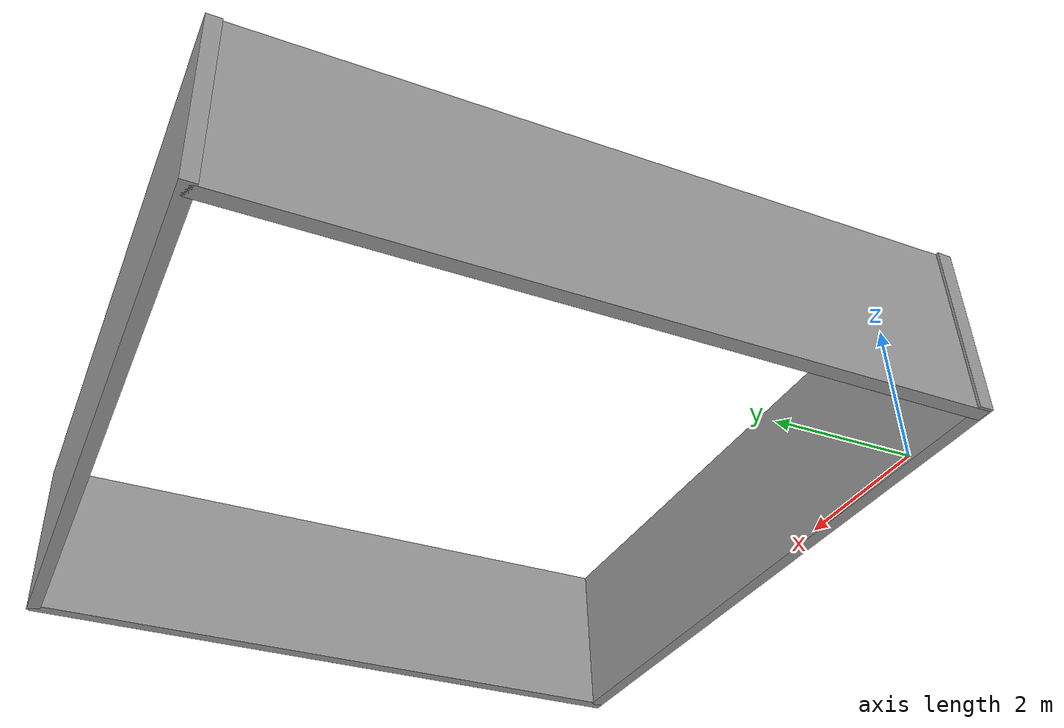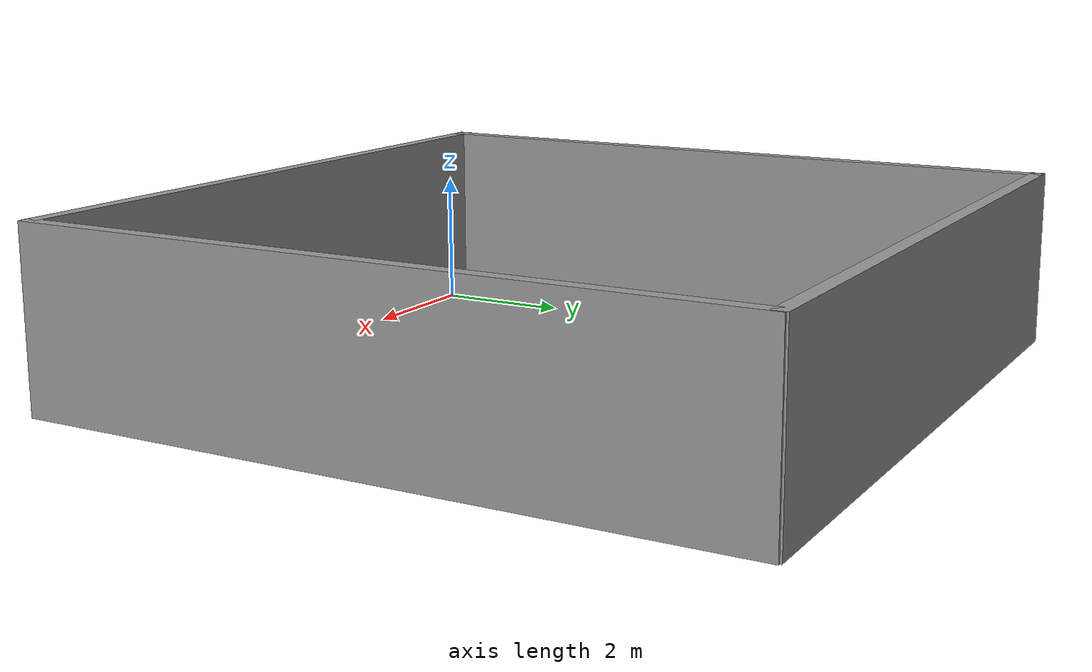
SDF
<?xml version='1.0'?>
<sdf version='1.6'>
  <model name='grey_square'>
    <link name='link_clone_0'>
      <pose frame=''>-0.918551 4.56694 1.4 0 0 -1.56949</pose>
      <inertial>
        <mass>1</mass>
        <pose frame=''>0 0 0 0 -0 0</pose>
        <inertia>
          <ixx>1</ixx>
          <ixy>0</ixy>
          <ixz>0</ixz>
          <iyy>1</iyy>
          <iyz>0</iyz>
          <izz>1</izz>
        </inertia>
      </inertial>
      <self_collide>0</self_collide>
      <kinematic>0</kinematic>
      <enable_wind>0</enable_wind>
      <gravity>1</gravity>
      <visual name='visual'>
        <cast_shadows>0</cast_shadows>
        <geometry>
          <box>
            <size>10 0.2 2.5</size>
          </box>
        </geometry>
        <material>
          <script>
            <uri>model://grey_wall/materials/scripts</uri>
            <uri>model://grey_wall/materials/textures</uri>
            <name>vrc/grey_wall</name>
          </script>
          <ambient>1 1 1 1</ambient>
          <diffuse>1 1 1 1</diffuse>
          <specular>0 0 0 1</specular>
          <emissive>0 0 0 1</emissive>
          <shader type='vertex'>
            <normal_map>__default__</normal_map>
          </shader>
        </material>
        <pose frame=''>0 0 0 0 -0 0</pose>
        <transparency>0</transparency>
      </visual>
      <collision name='collision'>
        <laser_retro>0</laser_retro>
        <max_contacts>10</max_contacts>
        <pose frame=''>0 0 0 0 -0 0</pose>
        <geometry>
          <box>
            <size>10 0.2 2.5</size>
          </box>
        </geometry>
        <surface>
          <friction>
            <ode>
              <mu>1</mu>
              <mu2>1</mu2>
              <fdir1>0 0 0</fdir1>
              <slip1>0</slip1>
              <slip2>0</slip2>
            </ode>
            <torsional>
              <coefficient>1</coefficient>
              <patch_radius>0</patch_radius>
              <surface_radius>0</surface_radius>
              <use_patch_radius>1</use_patch_radius>
              <ode>
                <slip>0</slip>
              </ode>
            </torsional>
          </friction>
          <bounce>
            <restitution_coefficient>0</restitution_coefficient>
            <threshold>1e+06</threshold>
          </bounce>
          <contact>
            <collide_without_contact>0</collide_without_contact>
            <collide_without_contact_bitmask>1</collide_without_contact_bitmask>
            <collide_bitmask>1</collide_bitmask>
            <ode>
              <soft_cfm>0</soft_cfm>
              <soft_erp>0.2</soft_erp>
              <kp>1e+13</kp>
              <kd>1</kd>
              <max_vel>0.01</max_vel>
              <min_depth>0</min_depth>
            </ode>
            <bullet>
              <split_impulse>1</split_impulse>
              <split_impulse_penetration_threshold>-0.01</split_impulse_penetration_threshold>
              <soft_cfm>0</soft_cfm>
              <soft_erp>0.2</soft_erp>
              <kp>1e+13</kp>
              <kd>1</kd>
            </bullet>
          </contact>
        </surface>
      </collision>
    </link>
    <link name='link_clone_0_clone'>
      <pose frame=''>8.8795 4.65571 1.4 0 0 -1.56949</pose>
      <inertial>
        <mass>1</mass>
        <pose frame=''>0 0 0 0 -0 0</pose>
        <inertia>
          <ixx>1</ixx>
          <ixy>0</ixy>
          <ixz>0</ixz>
          <iyy>1</iyy>
          <iyz>0</iyz>
          <izz>1</izz>
        </inertia>
      </inertial>
      <self_collide>0</self_collide>
      <kinematic>0</kinematic>
      <enable_wind>0</enable_wind>
      <gravity>1</gravity>
      <visual name='visual'>
        <cast_shadows>0</cast_shadows>
        <geometry>
          <box>
            <size>10 0.2 2.5</size>
          </box>
        </geometry>
        <material>
          <script>
            <uri>model://grey_wall/materials/scripts</uri>
            <uri>model://grey_wall/materials/textures</uri>
            <name>vrc/grey_wall</name>
          </script>
          <ambient>1 1 1 1</ambient>
          <diffuse>1 1 1 1</diffuse>
          <specular>0 0 0 1</specular>
          <emissive>0 0 0 1</emissive>
          <shader type='vertex'>
            <normal_map>__default__</normal_map>
          </shader>
        </material>
        <pose frame=''>0 0 0 0 -0 0</pose>
        <transparency>0</transparency>
      </visual>
      <collision name='collision'>
        <laser_retro>0</laser_retro>
        <max_contacts>10</max_contacts>
        <pose frame=''>0 0 0 0 -0 0</pose>
        <geometry>
          <box>
            <size>10 0.2 2.5</size>
          </box>
        </geometry>
        <surface>
          <friction>
            <ode>
              <mu>1</mu>
              <mu2>1</mu2>
              <fdir1>0 0 0</fdir1>
              <slip1>0</slip1>
              <slip2>0</slip2>
            </ode>
            <torsional>
              <coefficient>1</coefficient>
              <patch_radius>0</patch_radius>
              <surface_radius>0</surface_radius>
              <use_patch_radius>1</use_patch_radius>
              <ode>
                <slip>0</slip>
              </ode>
            </torsional>
          </friction>
          <bounce>
            <restitution_coefficient>0</restitution_coefficient>
            <threshold>1e+06</threshold>
          </bounce>
          <contact>
            <collide_without_contact>0</collide_without_contact>
            <collide_without_contact_bitmask>1</collide_without_contact_bitmask>
            <collide_bitmask>1</collide_bitmask>
            <ode>
              <soft_cfm>0</soft_cfm>
              <soft_erp>0.2</soft_erp>
              <kp>1e+13</kp>
              <kd>1</kd>
              <max_vel>0.01</max_vel>
              <min_depth>0</min_depth>
            </ode>
            <bullet>
              <split_impulse>1</split_impulse>
              <split_impulse_penetration_threshold>-0.01</split_impulse_penetration_threshold>
              <soft_cfm>0</soft_cfm>
              <soft_erp>0.2</soft_erp>
              <kp>1e+13</kp>
              <kd>1</kd>
            </bullet>
          </contact>
        </surface>
      </collision>
    </link>
    <link name='link_clone_0_clone_0'>
      <pose frame=''>3.94409 9.53382 1.4 0 0 -3.13166</pose>
      <inertial>
        <mass>1</mass>
        <pose frame=''>0 0 0 0 -0 0</pose>
        <inertia>
          <ixx>1</ixx>
          <ixy>0</ixy>
          <ixz>0</ixz>
          <iyy>1</iyy>
          <iyz>0</iyz>
          <izz>1</izz>
        </inertia>
      </inertial>
      <self_collide>0</self_collide>
      <kinematic>0</kinematic>
      <enable_wind>0</enable_wind>
      <gravity>1</gravity>
      <visual name='visual'>
        <cast_shadows>0</cast_shadows>
        <geometry>
          <box>
            <size>10 0.2 2.5</size>
          </box>
        </geometry>
        <material>
          <script>
            <uri>model://grey_wall/materials/scripts</uri>
            <uri>model://grey_wall/materials/textures</uri>
            <name>vrc/grey_wall</name>
          </script>
          <ambient>1 1 1 1</ambient>
          <diffuse>1 1 1 1</diffuse>
          <specular>0 0 0 1</specular>
          <emissive>0 0 0 1</emissive>
          <shader type='vertex'>
            <normal_map>__default__</normal_map>
          </shader>
        </material>
        <pose frame=''>0 0 0 0 -0 0</pose>
        <transparency>0</transparency>
      </visual>
      <collision name='collision'>
        <laser_retro>0</laser_retro>
        <max_contacts>10</max_contacts>
        <pose frame=''>0 0 0 0 -0 0</pose>
        <geometry>
          <box>
            <size>10 0.2 2.5</size>
          </box>
        </geometry>
        <surface>
          <friction>
            <ode>
              <mu>1</mu>
              <mu2>1</mu2>
              <fdir1>0 0 0</fdir1>
              <slip1>0</slip1>
              <slip2>0</slip2>
            </ode>
            <torsional>
              <coefficient>1</coefficient>
              <patch_radius>0</patch_radius>
              <surface_radius>0</surface_radius>
              <use_patch_radius>1</use_patch_radius>
              <ode>
                <slip>0</slip>
              </ode>
            </torsional>
          </friction>
          <bounce>
            <restitution_coefficient>0</restitution_coefficient>
            <threshold>1e+06</threshold>
          </bounce>
          <contact>
            <collide_without_contact>0</collide_without_contact>
            <collide_without_contact_bitmask>1</collide_without_contact_bitmask>
            <collide_bitmask>1</collide_bitmask>
            <ode>
              <soft_cfm>0</soft_cfm>
              <soft_erp>0.2</soft_erp>
              <kp>1e+13</kp>
              <kd>1</kd>
              <max_vel>0.01</max_vel>
              <min_depth>0</min_depth>
            </ode>
            <bullet>
              <split_impulse>1</split_impulse>
              <split_impulse_penetration_threshold>-0.01</split_impulse_penetration_threshold>
              <soft_cfm>0</soft_cfm>
              <soft_erp>0.2</soft_erp>
              <kp>1e+13</kp>
              <kd>1</kd>
            </bullet>
          </contact>
        </surface>
      </collision>
    </link>
    <link name='link_clone_0_clone_0_clone'>
      <pose frame=''>3.94732 -0.3056 1.4 0 0 -3.13166</pose>
      <inertial>
        <mass>1</mass>
        <pose frame=''>0 0 0 0 -0 0</pose>
        <inertia>
          <ixx>1</ixx>
          <ixy>0</ixy>
          <ixz>0</ixz>
          <iyy>1</iyy>
          <iyz>0</iyz>
          <izz>1</izz>
        </inertia>
      </inertial>
      <self_collide>0</self_collide>
      <kinematic>0</kinematic>
      <enable_wind>0</enable_wind>
      <gravity>1</gravity>
      <visual name='visual'>
        <cast_shadows>0</cast_shadows>
        <geometry>
          <box>
            <size>10 0.2 2.5</size>
          </box>
        </geometry>
        <material>
          <script>
            <uri>model://grey_wall/materials/scripts</uri>
            <uri>model://grey_wall/materials/textures</uri>
            <name>vrc/grey_wall</name>
          </script>
          <ambient>1 1 1 1</ambient>
          <diffuse>1 1 1 1</diffuse>
          <specular>0 0 0 1</specular>
          <emissive>0 0 0 1</emissive>
          <shader type='vertex'>
            <normal_map>__default__</normal_map>
          </shader>
        </material>
        <pose frame=''>0 0 0 0 -0 0</pose>
        <transparency>0</transparency>
      </visual>
      <collision name='collision'>
        <laser_retro>0</laser_retro>
        <max_contacts>10</max_contacts>
        <pose frame=''>0 0 0 0 -0 0</pose>
        <geometry>
          <box>
            <size>10 0.2 2.5</size>
          </box>
        </geometry>
        <surface>
          <friction>
            <ode>
              <mu>1</mu>
              <mu2>1</mu2>
              <fdir1>0 0 0</fdir1>
              <slip1>0</slip1>
              <slip2>0</slip2>
            </ode>
            <torsional>
              <coefficient>1</coefficient>
              <patch_radius>0</patch_radius>
              <surface_radius>0</surface_radius>
              <use_patch_radius>1</use_patch_radius>
              <ode>
                <slip>0</slip>
              </ode>
            </torsional>
          </friction>
          <bounce>
            <restitution_coefficient>0</restitution_coefficient>
            <threshold>1e+06</threshold>
          </bounce>
          <contact>
            <collide_without_contact>0</collide_without_contact>
            <collide_without_contact_bitmask>1</collide_without_contact_bitmask>
            <collide_bitmask>1</collide_bitmask>
            <ode>
              <soft_cfm>0</soft_cfm>
              <soft_erp>0.2</soft_erp>
              <kp>1e+13</kp>
              <kd>1</kd>
              <max_vel>0.01</max_vel>
              <min_depth>0</min_depth>
            </ode>
            <bullet>
              <split_impulse>1</split_impulse>
              <split_impulse_penetration_threshold>-0.01</split_impulse_penetration_threshold>
              <soft_cfm>0</soft_cfm>
              <soft_erp>0.2</soft_erp>
              <kp>1e+13</kp>
              <kd>1</kd>
            </bullet>
          </contact>
        </surface>
      </collision>
    </link>
    <static>1</static>
    <allow_auto_disable>1</allow_auto_disable>
  </model>
</sdf>
